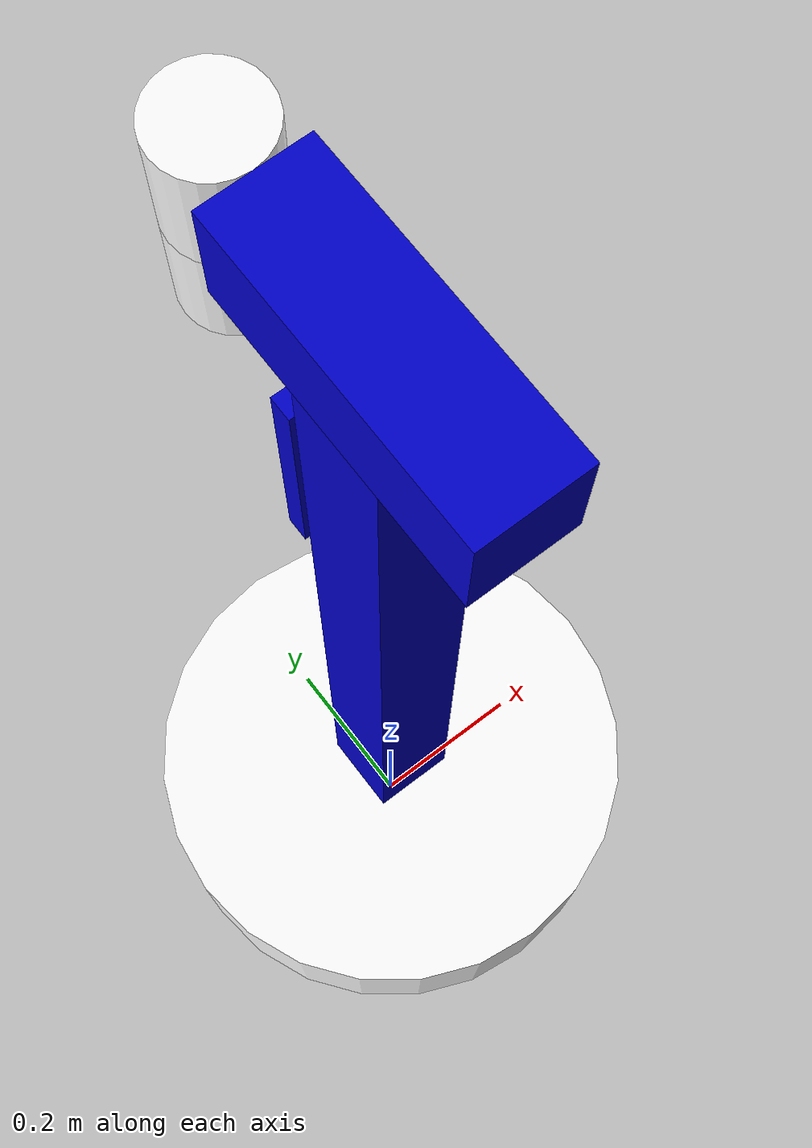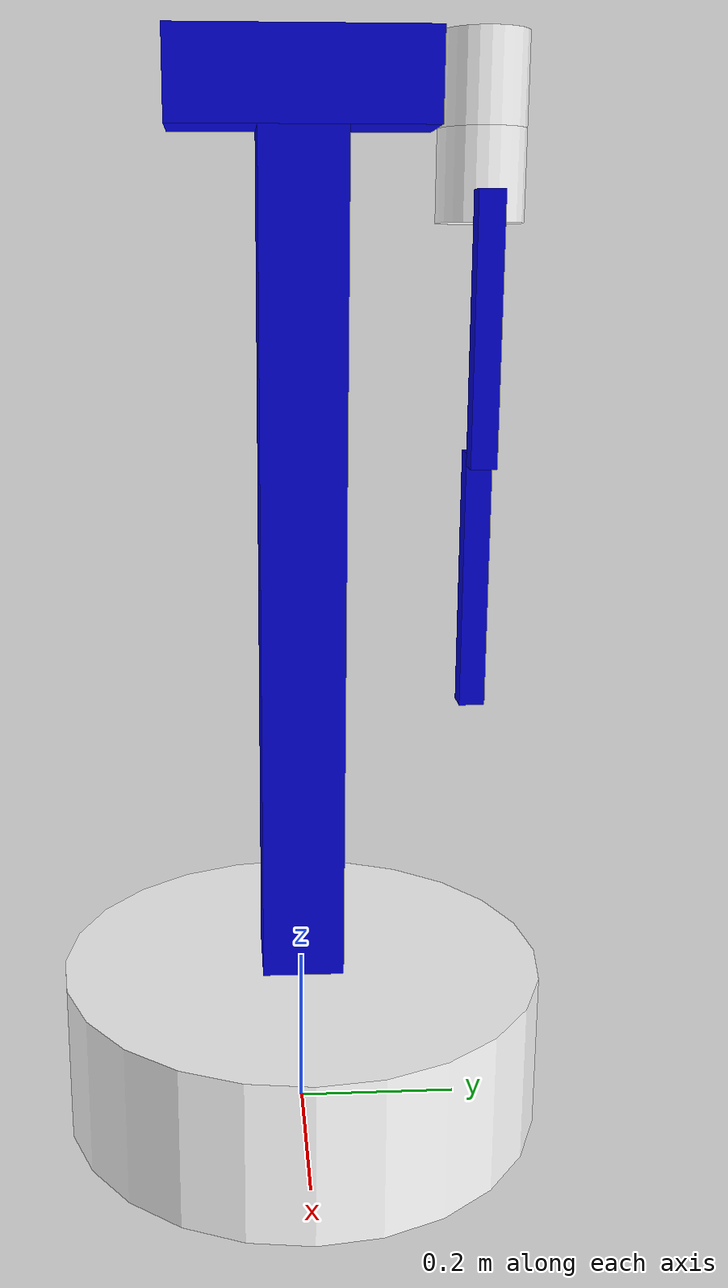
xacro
<?xml version='1.0'?>

<robot name="my_robot" xmlns:xacro="http://www.ros.org/wiki/xacro">

  <!--Define constants-->
  <xacro:property name="link_type" value="cuboidal" />
  <xacro:property name="PI" value="3.14159"/>
  <xacro:property name="mass1" value="50" />
  <xacro:property name="mass2" value="10" />
  <xacro:property name="mass3" value="2.5" />
  <xacro:property name="mass4" value="2.5" />
  <xacro:property name="mass5" value="2.5" />
  <xacro:property name="mass6" value="2.5" />
  <xacro:property name="mass7" value="2.5" />

  <xacro:property name="base_length" value="0.2" />
  <xacro:property name="base_radius" value="0.3" />

  <xacro:property name="link1_length" value="1.0" />
  <xacro:property name="link1_width" value="0.1" />

  <xacro:property name="link2_length" value="0.3" />
  <xacro:property name="link2_width" value="0.1" />

  <xacro:property name="link3_length" value="0.1" />
  <xacro:property name="link3_radius" value="0.05" />

  <xacro:property name="link4_length" value="0.1" />
  <xacro:property name="link4_radius" value="0.05" />

 <xacro:property name="link5_length" value="0.3" />
 <xacro:property name="link5_width" value="0.03" />

 <xacro:property name="link6_length" value="0.3" />
 <xacro:property name="link6_width" value="0.03" />

  <!--Import gazebo elements-->
  <xacro:include filename="$(find robot_arm)/urdf/robot_arm.gazebo.xacro" />

  <link name="robot_footprint"></link>

  <joint name="robot_footprint_joint" type="fixed">
    <origin xyz="0 0 0" rpy="0 0 0" />
    <parent link="robot_footprint"/>
    <child link="base_link" />
  </joint>

  <link name="base_link">
    <visual>
      <origin xyz="0 0 ${base_length/2}" rpy="0 0 0"/>
      <geometry>
        <cylinder length="${base_length}" radius="${base_radius}"/>
      </geometry>
      <material name="white">
        <color rgba="1.0 1.0 1.0 1.0"/>
      </material>
    </visual>
    <collision>
      <origin xyz="0 0 ${base_length/2}" rpy="0 0 0"/>
      <geometry>
        <cylinder length="${base_length}" radius="${base_radius}"/>
      </geometry>
    </collision>
    <inertial>
      <origin xyz="0 0 ${base_length/2}" rpy="0 0 0"/>
      <mass value="${mass1}"/>
      <inertia
        ixx="${mass1 / 12.0 * (2*base_radius*2*base_radius + base_length*base_length)}" ixy="0.0" ixz="0.0"
        iyy="${mass1 / 12.0 * (base_length*base_length + 2*base_radius*2*base_radius)}" iyz="0.0"
        izz="${mass1 / 12.0 * (2*base_radius*2*base_radius + 2*base_radius*2*base_radius)}"/>
    </inertial>
  </link>

  <link name="link_1">
    <visual>
      <origin xyz="0 0 ${link1_length/2}" rpy="0 0 0"/>
      <geometry>
        <box size="${link1_width} ${link1_width} ${link1_length}"/>
      </geometry>
      <material name="blue">
        <color rgba="0.0 0.0 0.8 1.0"/>
      </material>
    </visual>
    <collision>
      <origin xyz="0 0 ${link1_length/2}" rpy="0 0 0"/>
      <geometry>
        <box size="${link1_width} ${link1_width} ${link1_length}"/>
      </geometry>
    </collision>
    <inertial>
      <origin xyz="0 0 ${link1_length/2}" rpy="0 0 0"/>
      <mass value="${mass2}"/>
      <inertia
        ixx="${mass2 / 12.0 * (link1_width*link1_width + link1_length*link1_length)}" ixy="0.0" ixz="0.0"
        iyy="${mass2 / 12.0 * (link1_length*link1_length + link1_width*link1_width)}" iyz="0.0"
        izz="${mass2 / 12.0 * (link1_width*link1_width + link1_width*link1_width)}"/>
    </inertial>
  </link>

  <joint name="joint_0" type="fixed">
    <parent link="base_link"/>
    <child link="link_1"/>
    <axis xyz="0 0 1"/>
    <origin xyz="0 0 ${base_length}" rpy="0 0 0"/>
  </joint>

  <link name="link_2">
    <visual>
      <origin xyz="0 0 0" rpy="0 0 0"/>
      <geometry>
        <box size="${link2_width} ${link2_length} ${link2_width}"/>
      </geometry>
      <material name="blue">
        <color rgba="0.0 0.0 0.8 1.0"/>
      </material>
    </visual>
    <collision>
      <origin xyz="0 0 0" rpy="0 0 0"/>
      <geometry>
        <box size="${link2_width}  ${link2_length} ${link2_width}"/>
      </geometry>
    </collision>
    <inertial>
      <origin xyz="0 0 0" rpy="0 0 0"/>
      <mass value="${mass3}"/>
      <inertia
        ixx="${mass3 / 12.0 * (link2_width*link2_width + link2_length*link2_length)}" ixy="0.0" ixz="0.0"
        iyy="${mass3 / 12.0 * (link2_width*link2_width + link2_width*link2_width)}" iyz="0.0"
        izz="${mass3 / 12.0 * (link2_length*link2_length + link2_width*link2_width)}"/>
    </inertial>
  </link>

  <joint name="joint_1" type="continuous">
    <parent link="link_1"/>
    <child link="link_2"/>
    <axis xyz="0 0 1"/>
    <origin xyz="0 0 ${link1_length+link2_width/2}" rpy="0 0 0"/>
    <limit effort="60" velocity="2.0"/>
    <safety_controller k_velocity="10" k_position="15" soft_lower_limit="-2.0" soft_upper_limit="0.5" />
  </joint>

  <link name="link_3">
    <visual>
      <origin xyz="0 0 0" rpy="0 0 0"/>
      <geometry>
        <cylinder length="${link3_length}" radius="${link3_radius}"/>
      </geometry>
      <material name="white">
        <color rgba="1.0 1.0 1.0 1.0"/>
      </material>
    </visual>
    <collision>
      <origin xyz="0 0 0" rpy="0 0 0"/>
      <geometry>
        <cylinder length="${link3_length}" radius="${link3_radius}"/>
      </geometry>
    </collision>
    <inertial>
      <origin xyz="0 0 0" rpy="0 0 0"/>
      <mass value="${mass4}"/>
      <inertia
        ixx="${mass4 / 12.0 * (2*link3_radius*2*link3_radius + link3_length*link3_length)}" ixy="0.0" ixz="0.0"
        iyy="${mass4 / 12.0 * (link3_length*link3_length + 2*link3_radius*2*link3_radius)}" iyz="0.0"
        izz="${mass4 / 12.0 * (2*link3_radius*2*link3_radius + 2*link3_radius*2*link3_radius)}"/>
    </inertial>
  </link>

  <joint name="joint_2" type="continuous">
    <parent link="link_2"/>
    <child link="link_3"/>
    <axis xyz="0 1 0"/>
    <origin xyz="0 ${link2_length/2+link3_radius} 0" rpy="0 0 0"/>
    <limit effort="60" velocity="2.0"/>
    <safety_controller k_velocity="10" k_position="15" soft_lower_limit="-2.0" soft_upper_limit="0.5" />
  </joint>

  <link name="link_4">
    <visual>
      <origin xyz="0 0 0" rpy="0 0 0"/>
      <geometry>
        <cylinder length="${link4_length}" radius="${link4_radius}"/>
      </geometry>
      <material name="white">
        <color rgba="1.0 1.0 1.0 1.0"/>
      </material>
    </visual>
    <collision>
      <origin xyz="0 0 0" rpy="0 0 0"/>
      <geometry>
        <cylinder length="${link4_length}" radius="${link4_radius}"/>
      </geometry>
    </collision>
    <inertial>
      <origin xyz="0 0 0" rpy="0 0 0"/>
      <mass value="${mass4}"/>
      <inertia
        ixx="${mass4 / 12.0 * (2*link4_radius*2*link4_radius + link4_length*link4_length)}" ixy="0.0" ixz="0.0"
        iyy="${mass4 / 12.0 * (link4_length*link4_length + 2*link4_radius*2*link4_radius)}" iyz="0.0"
        izz="${mass4 / 12.0 * (2*link4_radius*2*link4_radius + 2*link4_radius*2*link4_radius)}"/>
    </inertial>
  </link>

  <joint name="joint_3" type="continuous">
    <parent link="link_3"/>
    <child link="link_4"/>
    <axis xyz="0 0 1"/>
    <origin xyz="0 0 -${link4_length}" rpy="0 0 0"/>
    <limit effort="60" velocity="2.0"/>
    <safety_controller k_velocity="10" k_position="15" soft_lower_limit="-2.0" soft_upper_limit="0.5" />
  </joint>

  <link name="link_5">
    <visual>
      <origin xyz="0 0 -${link5_length/2}" rpy="0 0 0"/>
      <geometry>
        <box size="${link5_width} ${link5_width} ${link5_length}"/>
      </geometry>
      <material name="blue">
        <color rgba="0.0 0.0 0.8 1.0"/>
      </material>
    </visual>
    <collision>
      <origin xyz="0 0 -${link5_length/2}" rpy="0 0 0"/>
      <geometry>
        <box size="${link5_width} ${link5_width} ${link5_length}"/>
      </geometry>
    </collision>
    <inertial>
      <origin xyz="0 0 0" rpy="0 0 0"/>
      <mass value="${mass6}"/>
      <inertia
        ixx="${mass6 / 12.0 * (link5_width*link5_width + link5_length*link5_length)}" ixy="0.0" ixz="0.0"
        iyy="${mass6 / 12.0 * (link5_length*link5_length + link5_width*link5_width)}" iyz="0.0"
        izz="${mass6 / 12.0 * (link5_width*link5_width + link5_width*link5_width)}"/>
    </inertial>
  </link>

  <joint name="joint_4" type="continuous">
    <parent link="link_4"/>
    <child link="link_5"/>
    <axis xyz="1 0 0"/>
    <origin xyz="${link4_radius+link5_width/2} 0 -${link4_length/6}" rpy="0 0 0"/>
    <limit effort="60" velocity="2.0"/>
    <safety_controller k_velocity="10" k_position="15" soft_lower_limit="-2.0" soft_upper_limit="0.5" />
  </joint>

 <link name="link_6">
    <visual>
      <origin xyz="0 0 -${link6_length/2}" rpy="0 0 0"/>
      <geometry>
        <box size="${link6_width} ${link6_width} ${link6_length}"/>
      </geometry>
      <material name="blue">
        <color rgba="0.0 0.0 0.8 1.0"/>
      </material>
    </visual>
    <collision>
      <origin xyz="0 0 -${link6_length/2}" rpy="0 0 0"/>
      <geometry>
        <box size="${link6_width} ${link6_width} ${link6_length}"/>
      </geometry>
    </collision>
    <inertial>
      <origin xyz="0 0 ${link6_length/2}" rpy="0 0 0"/>
      <mass value="${mass7}"/>
      <inertia
        ixx="${mass7 / 12.0 * (link6_width*link6_width + link6_length*link6_length)}" ixy="0.0" ixz="0.0"
        iyy="${mass7 / 12.0 * (link6_length*link6_length + link6_width*link6_width)}" iyz="0.0"
        izz="${mass7 / 12.0 * (link6_width*link6_width + link6_width*link6_width)}"/>
    </inertial>
  </link>

  <joint name="joint_5" type="continuous">
    <parent link="link_5"/>
    <child link="link_6"/>
    <axis xyz="1 0 0"/>
    <origin xyz="-${link5_width/2+link6_width/2} 0 -${link6_length-link6_width/2}" rpy="0 0 0"/>
    <limit effort="60" velocity="2.0"/>
    <safety_controller k_velocity="10" k_position="15" soft_lower_limit="-2.0" soft_upper_limit="0.5" />
  </joint>

  <!--Transmission and actuators-->
  <transmission name="tran1">
    <type>transmission_interface/SimpleTransmission</type>
    <joint name="joint_1">
      <hardwareInterface>hardware_interface/EffortJointInterface</hardwareInterface>
    </joint>
    <actuator name="motor1">
      <hardwareInterface>EffortJointInterface</hardwareInterface>
      <mechanicalReduction>1</mechanicalReduction>
    </actuator>
  </transmission>

  <transmission name="tran2">
    <type>transmission_interface/SimpleTransmission</type>
    <joint name="joint_2">
      <hardwareInterface>hardware_interface/EffortJointInterface</hardwareInterface>
    </joint>
    <actuator name="motor2">
      <hardwareInterface>EffortJointInterface</hardwareInterface>
      <mechanicalReduction>1</mechanicalReduction>
    </actuator>
  </transmission>

  <transmission name="tran3">
    <type>transmission_interface/SimpleTransmission</type>
    <joint name="joint_3">
      <hardwareInterface>hardware_interface/EffortJointInterface</hardwareInterface>
    </joint>
    <actuator name="motor3">
      <hardwareInterface>EffortJointInterface</hardwareInterface>
      <mechanicalReduction>1</mechanicalReduction>
    </actuator>
  </transmission>

  <transmission name="tran4">
    <type>transmission_interface/SimpleTransmission</type>
    <joint name="joint_4">
      <hardwareInterface>hardware_interface/EffortJointInterface</hardwareInterface>
    </joint>
    <actuator name="motor4">
      <hardwareInterface>EffortJointInterface</hardwareInterface>
      <mechanicalReduction>1</mechanicalReduction>
    </actuator>
  </transmission>

  <transmission name="tran5">
    <type>transmission_interface/SimpleTransmission</type>
    <joint name="joint_5">
      <hardwareInterface>hardware_interface/EffortJointInterface</hardwareInterface>
    </joint>
    <actuator name="motor5">
      <hardwareInterface>EffortJointInterface</hardwareInterface>
      <mechanicalReduction>1</mechanicalReduction>
    </actuator>
  </transmission>

</robot>
